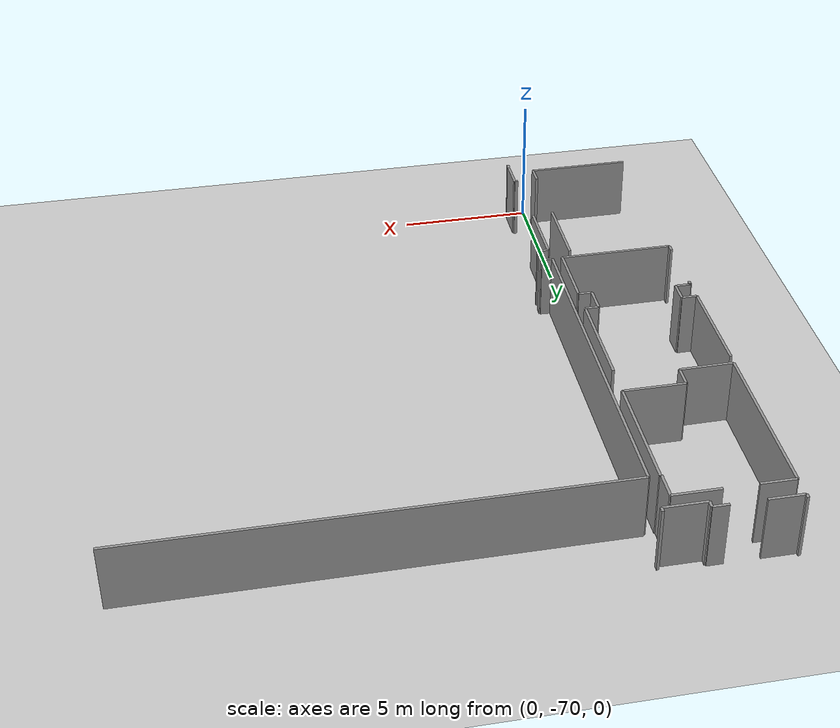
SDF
<sdf version="1.6">
 <world name="default">
  <model name="ground_plane">
   <static>1</static>
   <link name="link">
    <collision name="collision">
     <geometry><plane><normal>0 0 1</normal><size>100 100</size></plane></geometry>
     <surface><friction><ode><mu>100</mu><mu2>50</mu2></ode></friction></surface>
    </collision>
    <visual name="visual">
     <cast_shadows>0</cast_shadows>
     <geometry><plane><normal>0 0 1</normal><size>100 100</size></plane></geometry>
     <material>
      <script><uri>file://media/materials/scripts/gazebo.material</uri><name>Gazebo/Grey</name></script>
     </material>
    </visual>
   </link>
  </model>
  <model name="0510045925_40">
   <static>1</static>
   <link name="Wall_1442">
    <collision name="Wall_1442_Collision">
     <geometry><box><size>3.8466028781 0.1 2.5</size></box></geometry>
     <pose>1.92330143905 0 1.25 0 0 0</pose>
    </collision>
    <visual name="Wall_1442_Visual">
     <pose>1.92330143905 0 1.25 0 0 0</pose>
     <geometry><box><size>3.8466028781 0.1 2.5</size></box></geometry>
     <material>
      <script><uri>file://media/materials/scripts/gazebo.material</uri><name>Gazebo/Grey</name></script>
      <ambient>1 1 1 1</ambient>
     </material>
    </visual>
    <pose>134.149184031 -156.414481866 0 0 0 -1.57079632679</pose>
   </link>
   <link name="Wall_1443">
    <collision name="Wall_1443_Collision">
     <geometry><box><size>0.498718306642 0.1 2.5</size></box></geometry>
     <pose>0.249359153321 0 1.25 0 0 0</pose>
    </collision>
    <visual name="Wall_1443_Visual">
     <pose>0.249359153321 0 1.25 0 0 0</pose>
     <geometry><box><size>0.498718306642 0.1 2.5</size></box></geometry>
     <material>
      <script><uri>file://media/materials/scripts/gazebo.material</uri><name>Gazebo/Grey</name></script>
      <ambient>1 1 1 1</ambient>
     </material>
    </visual>
    <pose>134.149184031 -160.261084744 0 0 0 3.14159265359</pose>
   </link>
   <link name="Wall_1444">
    <collision name="Wall_1444_Collision">
     <geometry><box><size>0.955051902236 0.1 2.5</size></box></geometry>
     <pose>0.477525951118 0 1.25 0 0 0</pose>
    </collision>
    <visual name="Wall_1444_Visual">
     <pose>0.477525951118 0 1.25 0 0 0</pose>
     <geometry><box><size>0.955051902236 0.1 2.5</size></box></geometry>
     <material>
      <script><uri>file://media/materials/scripts/gazebo.material</uri><name>Gazebo/Grey</name></script>
      <ambient>1 1 1 1</ambient>
     </material>
    </visual>
    <pose>133.650465724 -160.261084744 0 0 0 -1.57079632679</pose>
   </link>
   <link name="Wall_1445">
    <collision name="Wall_1445_Collision">
     <geometry><box><size>0.507093728586 0.1 2.5</size></box></geometry>
     <pose>0.253546864293 0 1.25 0 0 0</pose>
    </collision>
    <visual name="Wall_1445_Visual">
     <pose>0.253546864293 0 1.25 0 0 0</pose>
     <geometry><box><size>0.507093728586 0.1 2.5</size></box></geometry>
     <material>
      <script><uri>file://media/materials/scripts/gazebo.material</uri><name>Gazebo/Grey</name></script>
      <ambient>1 1 1 1</ambient>
     </material>
    </visual>
    <pose>133.650465724 -161.216136646 0 0 0 0.0</pose>
   </link>
   <link name="Wall_1446">
    <collision name="Wall_1446_Collision">
     <geometry><box><size>2.50780437045 0.1 2.5</size></box></geometry>
     <pose>1.25390218522 0 1.25 0 0 0</pose>
    </collision>
    <visual name="Wall_1446_Visual">
     <pose>1.25390218522 0 1.25 0 0 0</pose>
     <geometry><box><size>2.50780437045 0.1 2.5</size></box></geometry>
     <material>
      <script><uri>file://media/materials/scripts/gazebo.material</uri><name>Gazebo/Grey</name></script>
      <ambient>1 1 1 1</ambient>
     </material>
    </visual>
    <pose>134.157559453 -161.216136646 0 0 0 -1.57079632679</pose>
   </link>
   <link name="Wall_1447">
    <collision name="Wall_1447_Collision">
     <geometry><box><size>4.25446054669 0.1 2.5</size></box></geometry>
     <pose>2.12723027334 0 1.25 0 0 0</pose>
    </collision>
    <visual name="Wall_1447_Visual">
     <pose>2.12723027334 0 1.25 0 0 0</pose>
     <geometry><box><size>4.25446054669 0.1 2.5</size></box></geometry>
     <material>
      <script><uri>file://media/materials/scripts/gazebo.material</uri><name>Gazebo/Grey</name></script>
      <ambient>1 1 1 1</ambient>
     </material>
    </visual>
    <pose>134.157559453 -163.723941017 0 0 0 3.14159265359</pose>
   </link>
   <link name="Wall_1448">
    <collision name="Wall_1448_Collision">
     <geometry><box><size>0.269536306185 0.1 2.5</size></box></geometry>
     <pose>0.134768153093 0 1.25 0 0 0</pose>
    </collision>
    <visual name="Wall_1448_Visual">
     <pose>0.134768153093 0 1.25 0 0 0</pose>
     <geometry><box><size>0.269536306185 0.1 2.5</size></box></geometry>
     <material>
      <script><uri>file://media/materials/scripts/gazebo.material</uri><name>Gazebo/Grey</name></script>
      <ambient>1 1 1 1</ambient>
     </material>
    </visual>
    <pose>129.903098906 -163.723941017 0 0 0 1.57079632679</pose>
   </link>
   <link name="Wall_1449">
    <collision name="Wall_1449_Collision">
     <geometry><box><size>0.184259282759 0.1 2.5</size></box></geometry>
     <pose>0.0921296413797 0 1.25 0 0 0</pose>
    </collision>
    <visual name="Wall_1449_Visual">
     <pose>0.0921296413797 0 1.25 0 0 0</pose>
     <geometry><box><size>0.184259282759 0.1 2.5</size></box></geometry>
     <material>
      <script><uri>file://media/materials/scripts/gazebo.material</uri><name>Gazebo/Grey</name></script>
      <ambient>1 1 1 1</ambient>
     </material>
    </visual>
    <pose>129.903098906 -161.222481663 0 0 0 1.57079632679</pose>
   </link>
   <link name="Wall_1450">
    <collision name="Wall_1450_Collision">
     <geometry><box><size>0.579934519428 0.1 2.5</size></box></geometry>
     <pose>0.289967259714 0 1.25 0 0 0</pose>
    </collision>
    <visual name="Wall_1450_Visual">
     <pose>0.289967259714 0 1.25 0 0 0</pose>
     <geometry><box><size>0.579934519428 0.1 2.5</size></box></geometry>
     <material>
      <script><uri>file://media/materials/scripts/gazebo.material</uri><name>Gazebo/Grey</name></script>
      <ambient>1 1 1 1</ambient>
     </material>
    </visual>
    <pose>129.903098906 -161.03822238 0 0 0 0.0</pose>
   </link>
   <link name="Wall_1451">
    <collision name="Wall_1451_Collision">
     <geometry><box><size>0.786528260704 0.1 2.5</size></box></geometry>
     <pose>0.393264130352 0 1.25 0 0 0</pose>
    </collision>
    <visual name="Wall_1451_Visual">
     <pose>0.393264130352 0 1.25 0 0 0</pose>
     <geometry><box><size>0.786528260704 0.1 2.5</size></box></geometry>
     <material>
      <script><uri>file://media/materials/scripts/gazebo.material</uri><name>Gazebo/Grey</name></script>
      <ambient>1 1 1 1</ambient>
     </material>
    </visual>
    <pose>130.483033426 -161.03822238 0 0 0 1.57079632679</pose>
   </link>
   <link name="Wall_1452">
    <collision name="Wall_1452_Collision">
     <geometry><box><size>0.574350904799 0.1 2.5</size></box></geometry>
     <pose>0.2871754524 0 1.25 0 0 0</pose>
    </collision>
    <visual name="Wall_1452_Visual">
     <pose>0.2871754524 0 1.25 0 0 0</pose>
     <geometry><box><size>0.574350904799 0.1 2.5</size></box></geometry>
     <material>
      <script><uri>file://media/materials/scripts/gazebo.material</uri><name>Gazebo/Grey</name></script>
      <ambient>1 1 1 1</ambient>
     </material>
    </visual>
    <pose>130.483033426 -160.251694119 0 0 0 3.14159265359</pose>
   </link>
   <link name="Wall_1453">
    <collision name="Wall_1453_Collision">
     <geometry><box><size>3.83729122651 0.1 2.5</size></box></geometry>
     <pose>1.91864561325 0 1.25 0 0 0</pose>
    </collision>
    <visual name="Wall_1453_Visual">
     <pose>1.91864561325 0 1.25 0 0 0</pose>
     <geometry><box><size>3.83729122651 0.1 2.5</size></box></geometry>
     <material>
      <script><uri>file://media/materials/scripts/gazebo.material</uri><name>Gazebo/Grey</name></script>
      <ambient>1 1 1 1</ambient>
     </material>
    </visual>
    <pose>129.908682521 -160.251694119 0 0 0 1.57721200701</pose>
   </link>
   <link name="Wall_1455">
    <collision name="Wall_1455_Collision">
     <geometry><box><size>2.8819065506 0.1 2.5</size></box></geometry>
     <pose>1.4409532753 0 1.25 0 0 0</pose>
    </collision>
    <visual name="Wall_1455_Visual">
     <pose>1.4409532753 0 1.25 0 0 0</pose>
     <geometry><box><size>2.8819065506 0.1 2.5</size></box></geometry>
     <material>
      <script><uri>file://media/materials/scripts/gazebo.material</uri><name>Gazebo/Grey</name></script>
      <ambient>1 1 1 1</ambient>
     </material>
    </visual>
    <pose>133.759092409 -164.115301642 0 0 0 -1.57079632679</pose>
   </link>
   <link name="Wall_1456">
    <collision name="Wall_1456_Collision">
     <geometry><box><size>0.702520240603 0.1 2.5</size></box></geometry>
     <pose>0.351260120302 0 1.25 0 0 0</pose>
    </collision>
    <visual name="Wall_1456_Visual">
     <pose>0.351260120302 0 1.25 0 0 0</pose>
     <geometry><box><size>0.702520240603 0.1 2.5</size></box></geometry>
     <material>
      <script><uri>file://media/materials/scripts/gazebo.material</uri><name>Gazebo/Grey</name></script>
      <ambient>1 1 1 1</ambient>
     </material>
    </visual>
    <pose>133.759092409 -169.658561965 0 0 0 -1.57079632679</pose>
   </link>
   <link name="Wall_1457">
    <collision name="Wall_1457_Collision">
     <geometry><box><size>3.86842973529 0.1 2.5</size></box></geometry>
     <pose>1.93421486764 0 1.25 0 0 0</pose>
    </collision>
    <visual name="Wall_1457_Visual">
     <pose>1.93421486764 0 1.25 0 0 0</pose>
     <geometry><box><size>3.86842973529 0.1 2.5</size></box></geometry>
     <material>
      <script><uri>file://media/materials/scripts/gazebo.material</uri><name>Gazebo/Grey</name></script>
      <ambient>1 1 1 1</ambient>
     </material>
    </visual>
    <pose>133.759092409 -170.361082206 0 0 0 3.14159265359</pose>
   </link>
   <link name="Wall_1550">
    <collision name="Wall_1550_Collision">
     <geometry><box><size>6.29197228497 0.1 2.5</size></box></geometry>
     <pose>3.14598614248 0 1.25 0 0 0</pose>
    </collision>
    <visual name="Wall_1550_Visual">
     <pose>3.14598614248 0 1.25 0 0 0</pose>
     <geometry><box><size>6.29197228497 0.1 2.5</size></box></geometry>
     <material>
      <script><uri>file://media/materials/scripts/gazebo.material</uri><name>Gazebo/Grey</name></script>
      <ambient>1 1 1 1</ambient>
     </material>
    </visual>
    <pose>129.907667318 -156.048755108 0 0 0 1.57079632679</pose>
   </link>
   <link name="Wall_1551">
    <collision name="Wall_1551_Collision">
     <geometry><box><size>1.25859749753 0.1 2.5</size></box></geometry>
     <pose>0.629298748763 0 1.25 0 0 0</pose>
    </collision>
    <visual name="Wall_1551_Visual">
     <pose>0.629298748763 0 1.25 0 0 0</pose>
     <geometry><box><size>1.25859749753 0.1 2.5</size></box></geometry>
     <material>
      <script><uri>file://media/materials/scripts/gazebo.material</uri><name>Gazebo/Grey</name></script>
      <ambient>1 1 1 1</ambient>
     </material>
    </visual>
    <pose>129.907667318 -149.756782823 0 0 0 0.0</pose>
   </link>
   <link name="Wall_1552">
    <collision name="Wall_1552_Collision">
     <geometry><box><size>1.72838252836 0.1 2.5</size></box></geometry>
     <pose>0.864191264181 0 1.25 0 0 0</pose>
    </collision>
    <visual name="Wall_1552_Visual">
     <pose>0.864191264181 0 1.25 0 0 0</pose>
     <geometry><box><size>1.72838252836 0.1 2.5</size></box></geometry>
     <material>
      <script><uri>file://media/materials/scripts/gazebo.material</uri><name>Gazebo/Grey</name></script>
      <ambient>1 1 1 1</ambient>
     </material>
    </visual>
    <pose>132.387807416 -149.756782823 0 0 0 0.0</pose>
   </link>
   <link name="Wall_1553">
    <collision name="Wall_1553_Collision">
     <geometry><box><size>0.984746580036 0.1 2.5</size></box></geometry>
     <pose>0.492373290018 0 1.25 0 0 0</pose>
    </collision>
    <visual name="Wall_1553_Visual">
     <pose>0.492373290018 0 1.25 0 0 0</pose>
     <geometry><box><size>0.984746580036 0.1 2.5</size></box></geometry>
     <material>
      <script><uri>file://media/materials/scripts/gazebo.material</uri><name>Gazebo/Grey</name></script>
      <ambient>1 1 1 1</ambient>
     </material>
    </visual>
    <pose>134.116189944 -149.756782823 0 0 0 -1.57079632679</pose>
   </link>
   <link name="Wall_1554">
    <collision name="Wall_1554_Collision">
     <geometry><box><size>0.0380700997437 0.1 2.5</size></box></geometry>
     <pose>0.0190350498718 0 1.25 0 0 0</pose>
    </collision>
    <visual name="Wall_1554_Visual">
     <pose>0.0190350498718 0 1.25 0 0 0</pose>
     <geometry><box><size>0.0380700997437 0.1 2.5</size></box></geometry>
     <material>
      <script><uri>file://media/materials/scripts/gazebo.material</uri><name>Gazebo/Grey</name></script>
      <ambient>1 1 1 1</ambient>
     </material>
    </visual>
    <pose>134.116189944 -150.741529403 0 0 0 0.0</pose>
   </link>
   <link name="Wall_1555">
    <collision name="Wall_1555_Collision">
     <geometry><box><size>4.48998756377 0.1 2.5</size></box></geometry>
     <pose>2.24499378188 0 1.25 0 0 0</pose>
    </collision>
    <visual name="Wall_1555_Visual">
     <pose>2.24499378188 0 1.25 0 0 0</pose>
     <geometry><box><size>4.48998756377 0.1 2.5</size></box></geometry>
     <material>
      <script><uri>file://media/materials/scripts/gazebo.material</uri><name>Gazebo/Grey</name></script>
      <ambient>1 1 1 1</ambient>
     </material>
    </visual>
    <pose>134.154260044 -150.741529403 0 0 0 -1.57079632679</pose>
   </link>
   <link name="Wall_1556">
    <collision name="Wall_1556_Collision">
     <geometry><box><size>2.27253115403 0.1 2.5</size></box></geometry>
     <pose>1.13626557702 0 1.25 0 0 0</pose>
    </collision>
    <visual name="Wall_1556_Visual">
     <pose>1.13626557702 0 1.25 0 0 0</pose>
     <geometry><box><size>2.27253115403 0.1 2.5</size></box></geometry>
     <material>
      <script><uri>file://media/materials/scripts/gazebo.material</uri><name>Gazebo/Grey</name></script>
      <ambient>1 1 1 1</ambient>
     </material>
    </visual>
    <pose>134.154260044 -155.231516967 0 0 0 3.14159265359</pose>
   </link>
   <link name="Wall_1557">
    <collision name="Wall_1557_Collision">
     <geometry><box><size>0.799979695947 0.1 2.5</size></box></geometry>
     <pose>0.399989847973 0 1.25 0 0 0</pose>
    </collision>
    <visual name="Wall_1557_Visual">
     <pose>0.399989847973 0 1.25 0 0 0</pose>
     <geometry><box><size>0.799979695947 0.1 2.5</size></box></geometry>
     <material>
      <script><uri>file://media/materials/scripts/gazebo.material</uri><name>Gazebo/Grey</name></script>
      <ambient>1 1 1 1</ambient>
     </material>
    </visual>
    <pose>131.88172889 -155.231516967 0 0 0 -1.57079632679</pose>
   </link>
   <link name="Wall_1558">
    <collision name="Wall_1558_Collision">
     <geometry><box><size>1.9741370125 0.1 2.5</size></box></geometry>
     <pose>0.987068506252 0 1.25 0 0 0</pose>
    </collision>
    <visual name="Wall_1558_Visual">
     <pose>0.987068506252 0 1.25 0 0 0</pose>
     <geometry><box><size>1.9741370125 0.1 2.5</size></box></geometry>
     <material>
      <script><uri>file://media/materials/scripts/gazebo.material</uri><name>Gazebo/Grey</name></script>
      <ambient>1 1 1 1</ambient>
     </material>
    </visual>
    <pose>131.88172889 -156.031496663 0 0 0 -3.13285026897</pose>
   </link>
   <link name="Wall_1657">
    <collision name="Wall_1657_Collision">
     <geometry><box><size>0.18070607345 0.1 2.5</size></box></geometry>
     <pose>0.0903530367249 0 1.25 0 0 0</pose>
    </collision>
    <visual name="Wall_1657_Visual">
     <pose>0.0903530367249 0 1.25 0 0 0</pose>
     <geometry><box><size>0.18070607345 0.1 2.5</size></box></geometry>
     <material>
      <script><uri>file://media/materials/scripts/gazebo.material</uri><name>Gazebo/Grey</name></script>
      <ambient>1 1 1 1</ambient>
     </material>
    </visual>
    <pose>134.565924723 -149.072028629 0 0 0 -1.57079632679</pose>
   </link>
   <link name="Wall_1658">
    <collision name="Wall_1658_Collision">
     <geometry><box><size>1.56544250146 0.1 2.5</size></box></geometry>
     <pose>0.78272125073 0 1.25 0 0 0</pose>
    </collision>
    <visual name="Wall_1658_Visual">
     <pose>0.78272125073 0 1.25 0 0 0</pose>
     <geometry><box><size>1.56544250146 0.1 2.5</size></box></geometry>
     <material>
      <script><uri>file://media/materials/scripts/gazebo.material</uri><name>Gazebo/Grey</name></script>
      <ambient>1 1 1 1</ambient>
     </material>
    </visual>
    <pose>134.565924723 -149.252734702 0 0 0 3.14159265359</pose>
   </link>
   <link name="Wall_1659">
    <collision name="Wall_1659_Collision">
     <geometry><box><size>0.252531661633 0.1 2.5</size></box></geometry>
     <pose>0.126265830816 0 1.25 0 0 0</pose>
    </collision>
    <visual name="Wall_1659_Visual">
     <pose>0.126265830816 0 1.25 0 0 0</pose>
     <geometry><box><size>0.252531661633 0.1 2.5</size></box></geometry>
     <material>
      <script><uri>file://media/materials/scripts/gazebo.material</uri><name>Gazebo/Grey</name></script>
      <ambient>1 1 1 1</ambient>
     </material>
    </visual>
    <pose>133.000482221 -149.252734702 0 0 0 1.57079632679</pose>
   </link>
   <link name="Wall_1660">
    <collision name="Wall_1660_Collision">
     <geometry><box><size>0.584502931398 0.1 2.5</size></box></geometry>
     <pose>0.292251465699 0 1.25 0 0 0</pose>
    </collision>
    <visual name="Wall_1660_Visual">
     <pose>0.292251465699 0 1.25 0 0 0</pose>
     <geometry><box><size>0.584502931398 0.1 2.5</size></box></geometry>
     <material>
      <script><uri>file://media/materials/scripts/gazebo.material</uri><name>Gazebo/Grey</name></script>
      <ambient>1 1 1 1</ambient>
     </material>
    </visual>
    <pose>133.000482221 -149.000203041 0 0 0 3.14159265359</pose>
   </link>
   <link name="Wall_1661">
    <collision name="Wall_1661_Collision">
     <geometry><box><size>1.27458693942 0.1 2.5</size></box></geometry>
     <pose>0.637293469709 0 1.25 0 0 0</pose>
    </collision>
    <visual name="Wall_1661_Visual">
     <pose>0.637293469709 0 1.25 0 0 0</pose>
     <geometry><box><size>1.27458693942 0.1 2.5</size></box></geometry>
     <material>
      <script><uri>file://media/materials/scripts/gazebo.material</uri><name>Gazebo/Grey</name></script>
      <ambient>1 1 1 1</ambient>
     </material>
    </visual>
    <pose>131.171087028 -149.000203041 0 0 0 3.14159265359</pose>
   </link>
   <link name="Wall_1662">
    <collision name="Wall_1662_Collision">
     <geometry><box><size>0.164209030228 0.1 2.5</size></box></geometry>
     <pose>0.0821045151138 0 1.25 0 0 0</pose>
    </collision>
    <visual name="Wall_1662_Visual">
     <pose>0.0821045151138 0 1.25 0 0 0</pose>
     <geometry><box><size>0.164209030228 0.1 2.5</size></box></geometry>
     <material>
      <script><uri>file://media/materials/scripts/gazebo.material</uri><name>Gazebo/Grey</name></script>
      <ambient>1 1 1 1</ambient>
     </material>
    </visual>
    <pose>129.896500089 -149.000203041 0 0 0 1.57079632679</pose>
   </link>
   <link name="Wall_1714">
    <collision name="Wall_1714_Collision">
     <geometry><box><size>1.14134159031 0.1 2.5</size></box></geometry>
     <pose>0.570670795157 0 1.25 0 0 0</pose>
    </collision>
    <visual name="Wall_1714_Visual">
     <pose>0.570670795157 0 1.25 0 0 0</pose>
     <geometry><box><size>1.14134159031 0.1 2.5</size></box></geometry>
     <material>
      <script><uri>file://media/materials/scripts/gazebo.material</uri><name>Gazebo/Grey</name></script>
      <ambient>1 1 1 1</ambient>
     </material>
    </visual>
    <pose>134.691809853 -170.796857948 0 0 0 1.57079632679</pose>
   </link>
   <link name="Wall_1715">
    <collision name="Wall_1715_Collision">
     <geometry><box><size>0.132991548438 0.1 2.5</size></box></geometry>
     <pose>0.0664957742189 0 1.25 0 0 0</pose>
    </collision>
    <visual name="Wall_1715_Visual">
     <pose>0.0664957742189 0 1.25 0 0 0</pose>
     <geometry><box><size>0.132991548438 0.1 2.5</size></box></geometry>
     <material>
      <script><uri>file://media/materials/scripts/gazebo.material</uri><name>Gazebo/Grey</name></script>
      <ambient>1 1 1 1</ambient>
     </material>
    </visual>
    <pose>134.691809853 -169.655516357 0 0 0 3.14159265359</pose>
   </link>
   <link name="Wall_1716">
    <collision name="Wall_1716_Collision">
     <geometry><box><size>2.57861475597 0.1 2.5</size></box></geometry>
     <pose>1.28930737799 0 1.25 0 0 0</pose>
    </collision>
    <visual name="Wall_1716_Visual">
     <pose>1.28930737799 0 1.25 0 0 0</pose>
     <geometry><box><size>2.57861475597 0.1 2.5</size></box></geometry>
     <material>
      <script><uri>file://media/materials/scripts/gazebo.material</uri><name>Gazebo/Grey</name></script>
      <ambient>1 1 1 1</ambient>
     </material>
    </visual>
    <pose>134.558818304 -166.919291389 0 0 0 1.57079632679</pose>
   </link>
   <link name="Wall_1717">
    <collision name="Wall_1717_Collision">
     <geometry><box><size>0.433999137078 0.1 2.5</size></box></geometry>
     <pose>0.216999568539 0 1.25 0 0 0</pose>
    </collision>
    <visual name="Wall_1717_Visual">
     <pose>0.216999568539 0 1.25 0 0 0</pose>
     <geometry><box><size>0.433999137078 0.1 2.5</size></box></geometry>
     <material>
      <script><uri>file://media/materials/scripts/gazebo.material</uri><name>Gazebo/Grey</name></script>
      <ambient>1 1 1 1</ambient>
     </material>
    </visual>
    <pose>134.558818304 -164.340676633 0 0 0 0.0</pose>
   </link>
   <link name="Wall_1752">
    <collision name="Wall_1752_Collision">
     <geometry><box><size>0.194055961872 0.1 2.5</size></box></geometry>
     <pose>0.0970279809358 0 1.25 0 0 0</pose>
    </collision>
    <visual name="Wall_1752_Visual">
     <pose>0.0970279809358 0 1.25 0 0 0</pose>
     <geometry><box><size>0.194055961872 0.1 2.5</size></box></geometry>
     <material>
      <script><uri>file://media/materials/scripts/gazebo.material</uri><name>Gazebo/Grey</name></script>
      <ambient>1 1 1 1</ambient>
     </material>
    </visual>
    <pose>134.675820411 -170.990254054 0 0 0 1.48830677289</pose>
   </link>
   <link name="Wall_1753">
    <collision name="Wall_1753_Collision">
     <geometry><box><size>12.967183574 0.1 2.5</size></box></geometry>
     <pose>6.48359178701 0 1.25 0 0 0</pose>
    </collision>
    <visual name="Wall_1753_Visual">
     <pose>6.48359178701 0 1.25 0 0 0</pose>
     <geometry><box><size>12.967183574 0.1 2.5</size></box></geometry>
     <material>
      <script><uri>file://media/materials/scripts/gazebo.material</uri><name>Gazebo/Grey</name></script>
      <ambient>1 1 1 1</ambient>
     </material>
    </visual>
    <pose>134.547904876 -163.702875562 0 0 0 1.57079632679</pose>
   </link>
   <link name="Wall_1754">
    <collision name="Wall_1754_Collision">
     <geometry><box><size>17.4216390447 0.1 2.5</size></box></geometry>
     <pose>8.71081952235 0 1.25 0 0 0</pose>
    </collision>
    <visual name="Wall_1754_Visual">
     <pose>8.71081952235 0 1.25 0 0 0</pose>
     <geometry><box><size>17.4216390447 0.1 2.5</size></box></geometry>
     <material>
      <script><uri>file://media/materials/scripts/gazebo.material</uri><name>Gazebo/Grey</name></script>
      <ambient>1 1 1 1</ambient>
     </material>
    </visual>
    <pose>134.547904876 -150.735691988 0 0 0 0.0</pose>
   </link>
   <link name="Wall_1760">
    <collision name="Wall_1760_Collision">
     <geometry><box><size>0.294662572016 0.1 2.5</size></box></geometry>
     <pose>0.147331286008 0 1.25 0 0 0</pose>
    </collision>
    <visual name="Wall_1760_Visual">
     <pose>0.147331286008 0 1.25 0 0 0</pose>
     <geometry><box><size>0.294662572016 0.1 2.5</size></box></geometry>
     <material>
      <script><uri>file://media/materials/scripts/gazebo.material</uri><name>Gazebo/Grey</name></script>
      <ambient>1 1 1 1</ambient>
     </material>
    </visual>
    <pose>134.961346159 -164.008705363 0 0 0 1.57079632679</pose>
   </link>
   <link name="Wall_1761">
    <collision name="Wall_1761_Collision">
     <geometry><box><size>0.413592071584 0.1 2.5</size></box></geometry>
     <pose>0.206796035792 0 1.25 0 0 0</pose>
    </collision>
    <visual name="Wall_1761_Visual">
     <pose>0.206796035792 0 1.25 0 0 0</pose>
     <geometry><box><size>0.413592071584 0.1 2.5</size></box></geometry>
     <material>
      <script><uri>file://media/materials/scripts/gazebo.material</uri><name>Gazebo/Grey</name></script>
      <ambient>1 1 1 1</ambient>
     </material>
    </visual>
    <pose>134.961346159 -163.714042791 0 0 0 3.11458878348</pose>
   </link>
   <pose>-133.95 101.083118449 0 0 0 0</pose>
  </model>
 </world>
</sdf>
